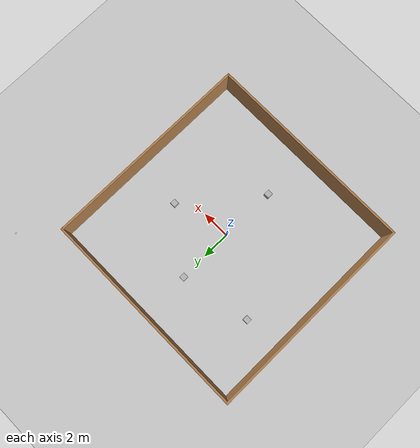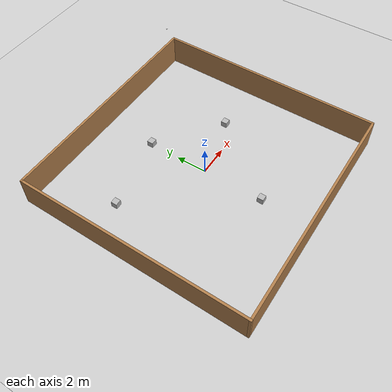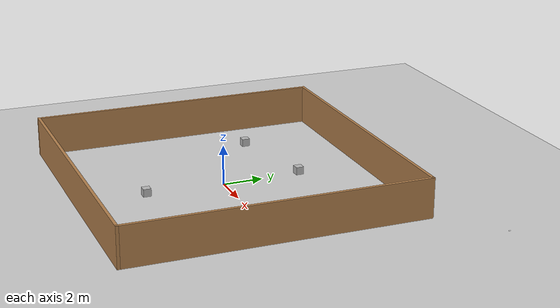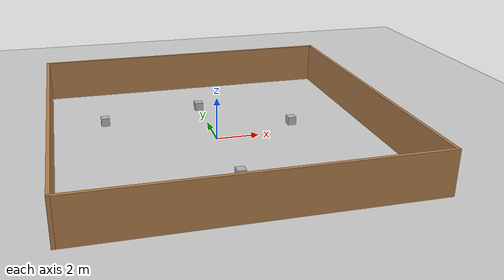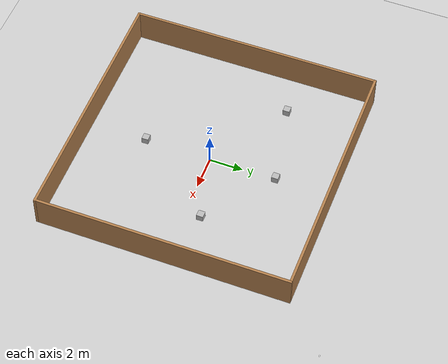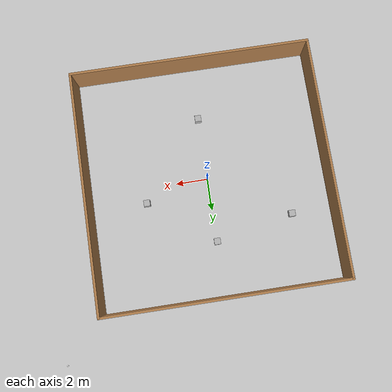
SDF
<sdf version="1.6">
 <world name="default">
  <light name="sun" type="directional">
   <pose>0 0 10 0 -0 0</pose>
   <diffuse>0.8 0.8 0.8 1</diffuse>
   <specular>0.1 0.1 0.1 1</specular>
   <attenuation>
    <range>1000</range>
    <constant>0.9</constant>
    <linear>0.01</linear>
    <quadratic>0.001</quadratic>
   </attenuation>
   <direction>-0.5 0.5 -1</direction>
  </light>
  <model name="ground_plane">
   <static>1</static>
   <link name="link">
    <collision name="collision">
     <geometry><plane><normal>0 0 1</normal><size>100 100</size></plane></geometry>
     <surface><friction><ode><mu>100</mu><mu2>50</mu2></ode></friction></surface>
    </collision>
    <visual name="visual">
     <cast_shadows>0</cast_shadows>
     <geometry><plane><normal>0 0 1</normal><size>100 100</size></plane></geometry>
     <material>
      <script><uri>file://media/materials/scripts/gazebo.material</uri><name>Gazebo/Grey</name></script>
     </material>
    </visual>
   </link>
  </model>
  <gravity>0 0 -9.8</gravity>
  <magnetic_field>6e-06 2.3e-05 -4.2e-05</magnetic_field>
  <atmosphere type="adiabatic"/>
  <physics name="default_physics" default="0" type="ode">
   <max_step_size>0.001</max_step_size>
   <real_time_factor>1</real_time_factor>
   <real_time_update_rate>1000</real_time_update_rate>
  </physics>
  <scene><ambient>0.4 0.4 0.4 1</ambient><background>0.7 0.7 0.7 1</background><shadows>1</shadows></scene>
  <spherical_coordinates>
   <surface_model>EARTH_WGS84</surface_model>
   <latitude_deg>0</latitude_deg>
   <longitude_deg>0</longitude_deg>
   <elevation>0</elevation>
   <heading_deg>0</heading_deg>
  </spherical_coordinates>
  <model name="obs_point_goal0">
   <pose>10 10 0.005 0 0 0</pose>
   <link name="link">
    <inertial><mass>1</mass></inertial>
    <visual name="visual">
     <geometry><cylinder><radius>0.05</radius><length>0.01</length></cylinder></geometry>
     <material>
      <script><uri>file://media/materials/scripts/gazebo.material</uri><name>Gazebo/White</name></script>
     </material>
    </visual>
    <velocity_decay><linear>0</linear><angular>0</angular></velocity_decay>
    <gravity>0</gravity>
   </link>
  </model>
  <model name="box">
   <link name="Wall_6">
    <pose>0 7.425 0 0 -0 0</pose>
    <visual name="Wall_6_Visual">
     <pose>0 0 1 0 -0 0</pose>
     <geometry><box><size>15 0.15 2</size></box></geometry>
     <material>
      <script><uri>file://media/materials/scripts/gazebo.material</uri><name>Gazebo/Wood</name></script>
      <ambient>1 1 1 1</ambient>
      <diffuse>1 1 1 1</diffuse>
      <specular>0.2 0.2 0.2 1</specular>
      <emissive>0 0 0 1</emissive>
     </material>
     <meta><layer>0</layer></meta>
    </visual>
    <collision name="Wall_6_Collision">
     <pose>0 0 1 0 -0 0</pose>
     <geometry><box><size>15 0.15 2</size></box></geometry>
     <surface>
      <friction>
       <ode><mu>1</mu><mu2>1</mu2><fdir1>0 0 0</fdir1><slip1>0</slip1><slip2>0</slip2></ode>
       <torsional>
        <coefficient>1</coefficient>
        <patch_radius>0</patch_radius>
        <surface_radius>0</surface_radius>
        <use_patch_radius>1</use_patch_radius>
        <ode><slip>0</slip></ode>
       </torsional>
      </friction>
      <bounce><restitution_coefficient>0</restitution_coefficient><threshold>1e+06</threshold></bounce>
      <contact>
       <collide_without_contact>0</collide_without_contact>
       <collide_without_contact_bitmask>1</collide_without_contact_bitmask>
       <collide_bitmask>1</collide_bitmask>
       <ode>
        <soft_cfm>0</soft_cfm>
        <soft_erp>0.2</soft_erp>
        <kp>1e+13</kp>
        <kd>1</kd>
        <max_vel>0.01</max_vel>
        <min_depth>0</min_depth>
       </ode>
       <bullet>
        <split_impulse>1</split_impulse>
        <split_impulse_penetration_threshold>-0.01</split_impulse_penetration_threshold>
        <soft_cfm>0</soft_cfm>
        <soft_erp>0.2</soft_erp>
        <kp>1e+13</kp>
        <kd>1</kd>
       </bullet>
      </contact>
     </surface>
    </collision>
   </link>
   <link name="Wall_7">
    <pose>7.425 0 0 0 0 -1.5708</pose>
    <visual name="Wall_7_Visual">
     <pose>0 0 1 0 -0 0</pose>
     <geometry><box><size>15 0.15 2</size></box></geometry>
     <material>
      <script><uri>file://media/materials/scripts/gazebo.material</uri><name>Gazebo/Wood</name></script>
      <ambient>1 1 1 1</ambient>
      <diffuse>1 1 1 1</diffuse>
      <specular>0.2 0.2 0.2 1</specular>
      <emissive>0 0 0 1</emissive>
     </material>
     <meta><layer>0</layer></meta>
    </visual>
    <collision name="Wall_7_Collision">
     <pose>0 0 1 0 -0 0</pose>
     <geometry><box><size>15 0.15 2</size></box></geometry>
     <surface>
      <friction>
       <ode><mu>1</mu><mu2>1</mu2><fdir1>0 0 0</fdir1><slip1>0</slip1><slip2>0</slip2></ode>
       <torsional>
        <coefficient>1</coefficient>
        <patch_radius>0</patch_radius>
        <surface_radius>0</surface_radius>
        <use_patch_radius>1</use_patch_radius>
        <ode><slip>0</slip></ode>
       </torsional>
      </friction>
      <bounce><restitution_coefficient>0</restitution_coefficient><threshold>1e+06</threshold></bounce>
      <contact>
       <collide_without_contact>0</collide_without_contact>
       <collide_without_contact_bitmask>1</collide_without_contact_bitmask>
       <collide_bitmask>1</collide_bitmask>
       <ode>
        <soft_cfm>0</soft_cfm>
        <soft_erp>0.2</soft_erp>
        <kp>1e+13</kp>
        <kd>1</kd>
        <max_vel>0.01</max_vel>
        <min_depth>0</min_depth>
       </ode>
       <bullet>
        <split_impulse>1</split_impulse>
        <split_impulse_penetration_threshold>-0.01</split_impulse_penetration_threshold>
        <soft_cfm>0</soft_cfm>
        <soft_erp>0.2</soft_erp>
        <kp>1e+13</kp>
        <kd>1</kd>
       </bullet>
      </contact>
     </surface>
    </collision>
   </link>
   <link name="Wall_8">
    <pose>0 -7.425 0 0 -0 3.14159</pose>
    <visual name="Wall_8_Visual">
     <pose>0 0 1 0 -0 0</pose>
     <geometry><box><size>15 0.15 2</size></box></geometry>
     <material>
      <script><uri>file://media/materials/scripts/gazebo.material</uri><name>Gazebo/Wood</name></script>
      <ambient>1 1 1 1</ambient>
      <diffuse>1 1 1 1</diffuse>
      <specular>0.2 0.2 0.2 1</specular>
      <emissive>0 0 0 1</emissive>
     </material>
     <meta><layer>0</layer></meta>
    </visual>
    <collision name="Wall_8_Collision">
     <pose>0 0 1 0 -0 0</pose>
     <geometry><box><size>15 0.15 2</size></box></geometry>
     <surface>
      <friction>
       <ode><mu>1</mu><mu2>1</mu2><fdir1>0 0 0</fdir1><slip1>0</slip1><slip2>0</slip2></ode>
       <torsional>
        <coefficient>1</coefficient>
        <patch_radius>0</patch_radius>
        <surface_radius>0</surface_radius>
        <use_patch_radius>1</use_patch_radius>
        <ode><slip>0</slip></ode>
       </torsional>
      </friction>
      <bounce><restitution_coefficient>0</restitution_coefficient><threshold>1e+06</threshold></bounce>
      <contact>
       <collide_without_contact>0</collide_without_contact>
       <collide_without_contact_bitmask>1</collide_without_contact_bitmask>
       <collide_bitmask>1</collide_bitmask>
       <ode>
        <soft_cfm>0</soft_cfm>
        <soft_erp>0.2</soft_erp>
        <kp>1e+13</kp>
        <kd>1</kd>
        <max_vel>0.01</max_vel>
        <min_depth>0</min_depth>
       </ode>
       <bullet>
        <split_impulse>1</split_impulse>
        <split_impulse_penetration_threshold>-0.01</split_impulse_penetration_threshold>
        <soft_cfm>0</soft_cfm>
        <soft_erp>0.2</soft_erp>
        <kp>1e+13</kp>
        <kd>1</kd>
       </bullet>
      </contact>
     </surface>
    </collision>
   </link>
   <link name="Wall_9">
    <pose>-7.425 0 0 0 -0 1.5708</pose>
    <visual name="Wall_9_Visual">
     <pose>0 0 1 0 -0 0</pose>
     <geometry><box><size>15 0.15 2</size></box></geometry>
     <material>
      <script><uri>file://media/materials/scripts/gazebo.material</uri><name>Gazebo/Wood</name></script>
      <ambient>1 1 1 1</ambient>
      <diffuse>1 1 1 1</diffuse>
      <specular>0.2 0.2 0.2 1</specular>
      <emissive>0 0 0 1</emissive>
     </material>
     <meta><layer>0</layer></meta>
    </visual>
    <collision name="Wall_9_Collision">
     <pose>0 0 1 0 -0 0</pose>
     <geometry><box><size>15 0.15 2</size></box></geometry>
     <surface>
      <friction>
       <ode><mu>1</mu><mu2>1</mu2><fdir1>0 0 0</fdir1><slip1>0</slip1><slip2>0</slip2></ode>
       <torsional>
        <coefficient>1</coefficient>
        <patch_radius>0</patch_radius>
        <surface_radius>0</surface_radius>
        <use_patch_radius>1</use_patch_radius>
        <ode><slip>0</slip></ode>
       </torsional>
      </friction>
      <bounce><restitution_coefficient>0</restitution_coefficient><threshold>1e+06</threshold></bounce>
      <contact>
       <collide_without_contact>0</collide_without_contact>
       <collide_without_contact_bitmask>1</collide_without_contact_bitmask>
       <collide_bitmask>1</collide_bitmask>
       <ode>
        <soft_cfm>0</soft_cfm>
        <soft_erp>0.2</soft_erp>
        <kp>1e+13</kp>
        <kd>1</kd>
        <max_vel>0.01</max_vel>
        <min_depth>0</min_depth>
       </ode>
       <bullet>
        <split_impulse>1</split_impulse>
        <split_impulse_penetration_threshold>-0.01</split_impulse_penetration_threshold>
        <soft_cfm>0</soft_cfm>
        <soft_erp>0.2</soft_erp>
        <kp>1e+13</kp>
        <kd>1</kd>
       </bullet>
      </contact>
     </surface>
    </collision>
   </link>
   <static>1</static>
   <pose>0.000564 -0.000118 0 0 -0 0</pose>
  </model>
  <model name="cardboard_box_0">
   <pose>3.96847 0.977565 0.149 0 -0 0</pose>
   <link name="link">
    <inertial>
     <mass>2</mass>
     <inertia>
      <ixx>0.0416667</ixx>
      <ixy>0</ixy>
      <ixz>0</ixz>
      <iyy>0.0566667</iyy>
      <iyz>0</iyz>
      <izz>0.0683333</izz>
     </inertia>
    </inertial>
    <collision name="collision">
     <geometry><box><size>0.5 0.4 0.3</size></box></geometry>
     <surface>
      <friction><ode><mu>1</mu><mu2>1</mu2></ode></friction>
      <contact><ode><kp>1e+07</kp><kd>1</kd><min_depth>0.001</min_depth><max_vel>0.1</max_vel></ode></contact>
     </surface>
    </collision>
    <visual name="visual">
     <pose>0 0 -0.15 0 -0 0</pose>
     <geometry>
      <mesh><uri>model://cardboard_box/meshes/cardboard_box.dae</uri><scale>1 1 1</scale></mesh>
     </geometry>
    </visual>
   </link>
  </model>
  <model name="cardboard_box_1">
   <pose>0.006438 -3.96264 0.149 0 -0 0</pose>
   <link name="link">
    <inertial>
     <mass>2</mass>
     <inertia>
      <ixx>0.0416667</ixx>
      <ixy>0</ixy>
      <ixz>0</ixz>
      <iyy>0.0566667</iyy>
      <iyz>0</iyz>
      <izz>0.0683333</izz>
     </inertia>
    </inertial>
    <collision name="collision">
     <geometry><box><size>0.5 0.4 0.3</size></box></geometry>
     <surface>
      <friction><ode><mu>1</mu><mu2>1</mu2></ode></friction>
      <contact><ode><kp>1e+07</kp><kd>1</kd><min_depth>0.001</min_depth><max_vel>0.1</max_vel></ode></contact>
     </surface>
    </collision>
    <visual name="visual">
     <pose>0 0 -0.15 0 -0 0</pose>
     <geometry>
      <mesh><uri>model://cardboard_box/meshes/cardboard_box.dae</uri><scale>1 1 1</scale></mesh>
     </geometry>
    </visual>
   </link>
  </model>
  <model name="cardboard_box_2">
   <pose>-4.88373 2.96722 0.149 0 -0 0</pose>
   <link name="link">
    <inertial>
     <mass>2</mass>
     <inertia>
      <ixx>0.0416667</ixx>
      <ixy>0</ixy>
      <ixz>0</ixz>
      <iyy>0.0566667</iyy>
      <iyz>0</iyz>
      <izz>0.0683333</izz>
     </inertia>
    </inertial>
    <collision name="collision">
     <geometry><box><size>0.5 0.4 0.3</size></box></geometry>
     <surface>
      <friction><ode><mu>1</mu><mu2>1</mu2></ode></friction>
      <contact><ode><kp>1e+07</kp><kd>1</kd><min_depth>0.001</min_depth><max_vel>0.1</max_vel></ode></contact>
     </surface>
    </collision>
    <visual name="visual">
     <pose>0 0 -0.15 0 -0 0</pose>
     <geometry>
      <mesh><uri>model://cardboard_box/meshes/cardboard_box.dae</uri><scale>1 1 1</scale></mesh>
     </geometry>
    </visual>
   </link>
  </model>
  <model name="cardboard_box_3">
   <pose>-0.0158 3.98725 0.14951 2e-06 -2e-06 -0</pose>
   <link name="link">
    <inertial>
     <mass>2</mass>
     <inertia>
      <ixx>0.0416667</ixx>
      <ixy>0</ixy>
      <ixz>0</ixz>
      <iyy>0.0566667</iyy>
      <iyz>0</iyz>
      <izz>0.0683333</izz>
     </inertia>
    </inertial>
    <collision name="collision">
     <geometry><box><size>0.5 0.4 0.3</size></box></geometry>
     <surface>
      <friction><ode><mu>1</mu><mu2>1</mu2></ode></friction>
      <contact><ode><kp>1e+07</kp><kd>1</kd><min_depth>0.001</min_depth><max_vel>0.1</max_vel></ode></contact>
     </surface>
    </collision>
    <visual name="visual">
     <pose>0 0 -0.15 0 -0 0</pose>
     <geometry>
      <mesh><uri>model://cardboard_box/meshes/cardboard_box.dae</uri><scale>1 1 1</scale></mesh>
     </geometry>
    </visual>
   </link>
  </model>
 </world>
</sdf>
